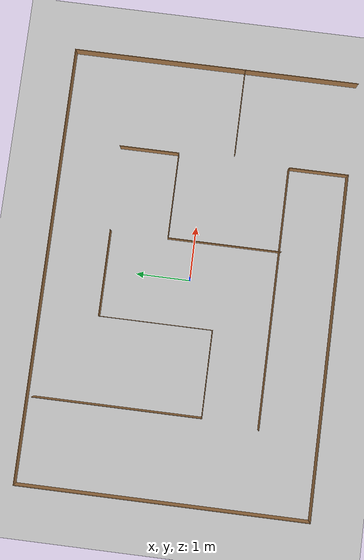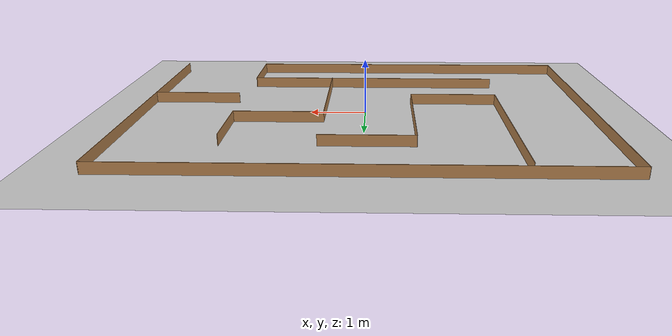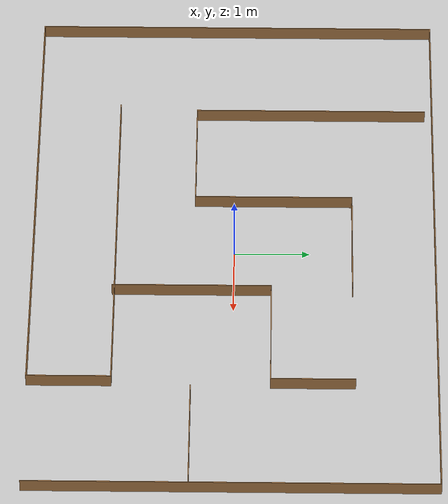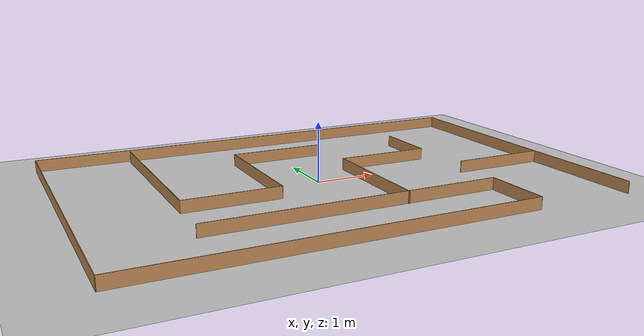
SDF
<sdf version="1.4">
  <world name="default">

    <scene>
      <ambient>0.4 0.4 0.4 1</ambient>
      <background>0.7 0.7 0.7 1</background>
      <shadows>true</shadows>
    </scene>

    <!-- A global light source -->
    <include>
      <uri>model://sun</uri>
    </include>

    <!-- A ground plane -->
    <include>
      <uri>model://ground_plane</uri>
    </include>

    <!-- Maze -->
    <include>
      <uri>model://maze</uri>
      <pose> 0 0 0 0 0 0 </pose>
    </include>

    <physics type="ode">
      <real_time_update_rate>1000.0</real_time_update_rate>
      <max_step_size>0.001</max_step_size>
      <real_time_factor>1</real_time_factor>
      <ode>
        <solver>
          <type>quick</type>
          <iters>150</iters>
          <precon_iters>0</precon_iters>
          <sor>1.400000</sor>
          <use_dynamic_moi_rescaling>1</use_dynamic_moi_rescaling>
        </solver>
        <constraints>
          <cfm>0.00001</cfm>
          <erp>0.2</erp>
          <contact_max_correcting_vel>2000.000000</contact_max_correcting_vel>
          <contact_surface_layer>0.01000</contact_surface_layer>
        </constraints>
      </ode>
    </physics>
  </world>

</sdf>

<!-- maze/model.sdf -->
<sdf version='1.6'>
  <model name='maze'>
    <pose frame=''>0.0245 0.032 0 0 -0 0</pose>
    <link name='Wall_0'>
      <collision name='Wall_0_Collision'>
        <geometry>
          <box>
            <size>5.36 0.01 0.2</size>
          </box>
        </geometry>
        <pose frame=''>0 0 0.1 0 -0 0</pose>
      </collision>
      <visual name='Wall_0_Visual'>
        <pose frame=''>0 0 0.1 0 -0 0</pose>
        <geometry>
          <box>
            <size>5.36 0.01 0.2</size>
          </box>
        </geometry>
        <material>
          <script>
            <uri>file://media/materials/scripts/gazebo.material</uri>
            <name>Gazebo/Wood</name>
          </script>
          <ambient>0.921569 0.807843 0.615686 1</ambient>
        </material>
      </visual>
      <pose frame=''>-4.05 0 0 0 0 -1.57098</pose>
    </link>
    <link name='Wall_1'>
      <collision name='Wall_1_Collision'>
        <geometry>
          <box>
            <size>6.3605 0.01 0.2</size>
          </box>
        </geometry>
        <pose frame=''>0 0 0.1 0 -0 0</pose>
      </collision>
      <visual name='Wall_1_Visual'>
        <pose frame=''>0 0 0.1 0 -0 0</pose>
        <geometry>
          <box>
            <size>6.3605 0.01 0.2</size>
          </box>
        </geometry>
        <material>
          <script>
            <uri>file://media/materials/scripts/gazebo.material</uri>
            <name>Gazebo/Wood</name>
          </script>
          <ambient>0.921569 0.807843 0.615686 1</ambient>
        </material>
      </visual>
      <pose frame=''>-0.875 -2.675 0 0 -0 0</pose>
    </link>
    <link name='Wall_10'>
      <collision name='Wall_10_Collision'>
        <geometry>
          <box>
            <size>5.36 0.01 0.2</size>
          </box>
        </geometry>
        <pose frame=''>0 0 0.1 0 -0 0</pose>
      </collision>
      <visual name='Wall_10_Visual'>
        <pose frame=''>0 0 0.1 0 -0 0</pose>
        <geometry>
          <box>
            <size>5.36 0.01 0.2</size>
          </box>
        </geometry>
        <material>
          <script>
            <uri>file://media/materials/scripts/gazebo.material</uri>
            <name>Gazebo/Wood</name>
          </script>
          <ambient>0.921569 0.807843 0.615686 1</ambient>
        </material>
      </visual>
      <pose frame=''>4.05 0 0 0 0 -1.57098</pose>
    </link>
    <link name='Wall_12'>
      <collision name='Wall_12_Collision'>
        <geometry>
          <box>
            <size>1.61 0.01 0.2</size>
          </box>
        </geometry>
        <pose frame=''>0 0 0.1 0 -0 0</pose>
      </collision>
      <visual name='Wall_12_Visual'>
        <pose frame=''>0 0 0.1 0 -0 0</pose>
        <geometry>
          <box>
            <size>1.61 0.01 0.2</size>
          </box>
        </geometry>
        <material>
          <script>
            <uri>file://media/materials/scripts/gazebo.material</uri>
            <name>Gazebo/Wood</name>
          </script>
          <ambient>0.921569 0.807843 0.615686 1</ambient>
        </material>
      </visual>
      <pose frame=''>3.2415 -0.5435 0 0 -0 3.14097</pose>
    </link>
    <link name='Wall_14'>
      <collision name='Wall_14_Collision'>
        <geometry>
          <box>
            <size>3.1095 0.01 0.2</size>
          </box>
        </geometry>
        <pose frame=''>0 0 0.1 0 -0 0</pose>
      </collision>
      <visual name='Wall_14_Visual'>
        <pose frame=''>0 0 0.1 0 -0 0</pose>
        <geometry>
          <box>
            <size>3.1095 0.01 0.2</size>
          </box>
        </geometry>
        <material>
          <script>
            <uri>file://media/materials/scripts/gazebo.material</uri>
            <name>Gazebo/Wood</name>
          </script>
          <ambient>0.921569 0.807843 0.615686 1</ambient>
        </material>
      </visual>
      <pose frame=''>-2.4625 1.021 0 0 0 -1.5708</pose>
    </link>
    <link name='Wall_15'>
      <collision name='Wall_15_Collision'>
        <geometry>
          <box>
            <size>1.61 0.01 0.2</size>
          </box>
        </geometry>
        <pose frame=''>0 0 0.1 0 -0 0</pose>
      </collision>
      <visual name='Wall_15_Visual'>
        <pose frame=''>0 0 0.1 0 -0 0</pose>
        <geometry>
          <box>
            <size>1.61 0.01 0.2</size>
          </box>
        </geometry>
        <material>
          <script>
            <uri>file://media/materials/scripts/gazebo.material</uri>
            <name>Gazebo/Wood</name>
          </script>
          <ambient>0.921569 0.807843 0.615686 1</ambient>
        </material>
      </visual>
      <pose frame=''>-1.6625 -0.529 0 0 -0 0</pose>
    </link>
    <link name='Wall_16'>
      <collision name='Wall_16_Collision'>
        <geometry>
          <box>
            <size>2.11 0.01 0.2</size>
          </box>
        </geometry>
        <pose frame=''>0 0 0.1 0 -0 0</pose>
      </collision>
      <visual name='Wall_16_Visual'>
        <pose frame=''>0 0 0.1 0 -0 0</pose>
        <geometry>
          <box>
            <size>2.11 0.01 0.2</size>
          </box>
        </geometry>
        <material>
          <script>
            <uri>file://media/materials/scripts/gazebo.material</uri>
            <name>Gazebo/Wood</name>
          </script>
          <ambient>0.921569 0.807843 0.615686 1</ambient>
        </material>
      </visual>
      <pose frame=''>-0.8625 0.521 0 0 -0 1.5708</pose>
    </link>
    <link name='Wall_17'>
      <collision name='Wall_17_Collision'>
        <geometry>
          <box>
            <size>1.6095 0.01 0.2</size>
          </box>
        </geometry>
        <pose frame=''>0 0 0.1 0 -0 0</pose>
      </collision>
      <visual name='Wall_17_Visual'>
        <pose frame=''>0 0 0.1 0 -0 0</pose>
        <geometry>
          <box>
            <size>1.6095 0.01 0.2</size>
          </box>
        </geometry>
        <material>
          <script>
            <uri>file://media/materials/scripts/gazebo.material</uri>
            <name>Gazebo/Wood</name>
          </script>
          <ambient>0.921569 0.807843 0.615686 1</ambient>
        </material>
      </visual>
      <pose frame=''>-0.0625 1.571 0 0 -0 0</pose>
    </link>
    <link name='Wall_2'>
      <collision name='Wall_2_Collision'>
        <geometry>
          <box>
            <size>1.11 0.01 0.2</size>
          </box>
        </geometry>
        <pose frame=''>0 0 0.1 0 -0 0</pose>
      </collision>
      <visual name='Wall_2_Visual'>
        <pose frame=''>0 0 0.1 0 -0 0</pose>
        <geometry>
          <box>
            <size>1.11 0.01 0.2</size>
          </box>
        </geometry>
        <material>
          <script>
            <uri>file://media/materials/scripts/gazebo.material</uri>
            <name>Gazebo/Wood</name>
          </script>
          <ambient>0.921569 0.807843 0.615686 1</ambient>
        </material>
      </visual>
      <pose frame=''>2.3005 -2.125 0 0 -0 1.5708</pose>
    </link>
    <link name='Wall_3'>
      <collision name='Wall_3_Collision'>
        <geometry>
          <box>
            <size>4.8605 0.01 0.2</size>
          </box>
        </geometry>
        <pose frame=''>0 0 0.1 0 -0 0</pose>
      </collision>
      <visual name='Wall_3_Visual'>
        <pose frame=''>0 0 0.1 0 -0 0</pose>
        <geometry>
          <box>
            <size>4.8605 0.01 0.2</size>
          </box>
        </geometry>
        <material>
          <script>
            <uri>file://media/materials/scripts/gazebo.material</uri>
            <name>Gazebo/Wood</name>
          </script>
          <ambient>0.921569 0.807843 0.615686 1</ambient>
        </material>
      </visual>
      <pose frame=''>-0.125 -1.575 0 0 -0 3.14159</pose>
    </link>
    <link name='Wall_5'>
      <collision name='Wall_5_Collision'>
        <geometry>
          <box>
            <size>2.11 0.01 0.2</size>
          </box>
        </geometry>
        <pose frame=''>0 0 0.1 0 -0 0</pose>
      </collision>
      <visual name='Wall_5_Visual'>
        <pose frame=''>0 0 0.1 0 -0 0</pose>
        <geometry>
          <box>
            <size>2.11 0.01 0.2</size>
          </box>
        </geometry>
        <material>
          <script>
            <uri>file://media/materials/scripts/gazebo.material</uri>
            <name>Gazebo/Wood</name>
          </script>
          <ambient>0.921569 0.807843 0.615686 1</ambient>
        </material>
      </visual>
      <pose frame=''>0.7225 -0.553 0 0 -0 1.5708</pose>
    </link>
    <link name='Wall_6'>
      <collision name='Wall_6_Collision'>
        <geometry>
          <box>
            <size>1.61 0.01 0.2</size>
          </box>
        </geometry>
        <pose frame=''>0 0 0.1 0 -0 0</pose>
      </collision>
      <visual name='Wall_6_Visual'>
        <pose frame=''>0 0 0.1 0 -0 0</pose>
        <geometry>
          <box>
            <size>1.61 0.01 0.2</size>
          </box>
        </geometry>
        <material>
          <script>
            <uri>file://media/materials/scripts/gazebo.material</uri>
            <name>Gazebo/Wood</name>
          </script>
          <ambient>0.921569 0.807843 0.615686 1</ambient>
        </material>
      </visual>
      <pose frame=''>1.5225 0.497 0 0 -0 0</pose>
    </link>
    <link name='Wall_7'>
      <collision name='Wall_7_Collision'>
        <geometry>
          <box>
            <size>1.11 0.01 0.2</size>
          </box>
        </geometry>
        <pose frame=''>0 0 0.1 0 -0 0</pose>
      </collision>
      <visual name='Wall_7_Visual'>
        <pose frame=''>0 0 0.1 0 -0 0</pose>
        <geometry>
          <box>
            <size>1.11 0.01 0.2</size>
          </box>
        </geometry>
        <material>
          <script>
            <uri>file://media/materials/scripts/gazebo.material</uri>
            <name>Gazebo/Wood</name>
          </script>
          <ambient>0.921569 0.807843 0.615686 1</ambient>
        </material>
      </visual>
      <pose frame=''>2.3225 1.047 0 0 -0 1.5708</pose>
    </link>
    <link name='Wall_9'>
      <collision name='Wall_9_Collision'>
        <geometry>
          <box>
            <size>8.1095 0.01 0.2</size>
          </box>
        </geometry>
        <pose frame=''>0 0 0.1 0 -0 0</pose>
      </collision>
      <visual name='Wall_9_Visual'>
        <pose frame=''>0 0 0.1 0 -0 0</pose>
        <geometry>
          <box>
            <size>8.1095 0.01 0.2</size>
          </box>
        </geometry>
        <material>
          <script>
            <uri>file://media/materials/scripts/gazebo.material</uri>
            <name>Gazebo/Wood</name>
          </script>
          <ambient>0.921569 0.807843 0.615686 1</ambient>
        </material>
      </visual>
      <pose frame=''>0.0005 2.675 0 0 -0 0</pose>
    </link>
    <static>1</static>
  </model>
</sdf>
